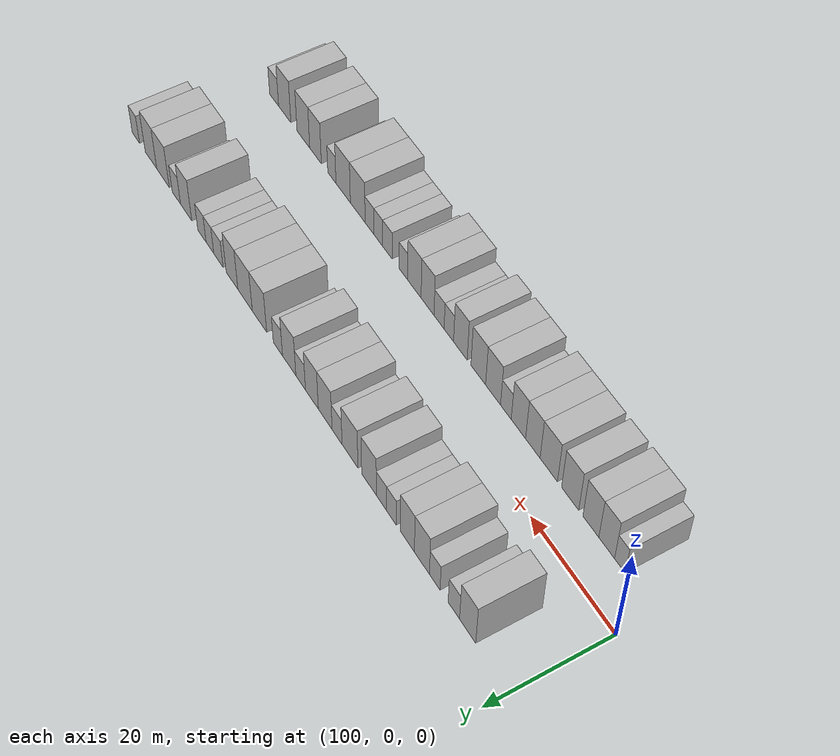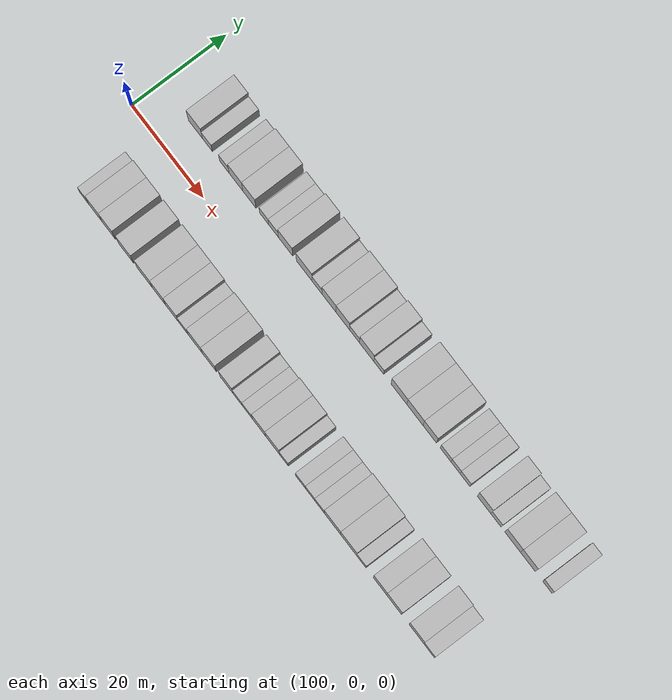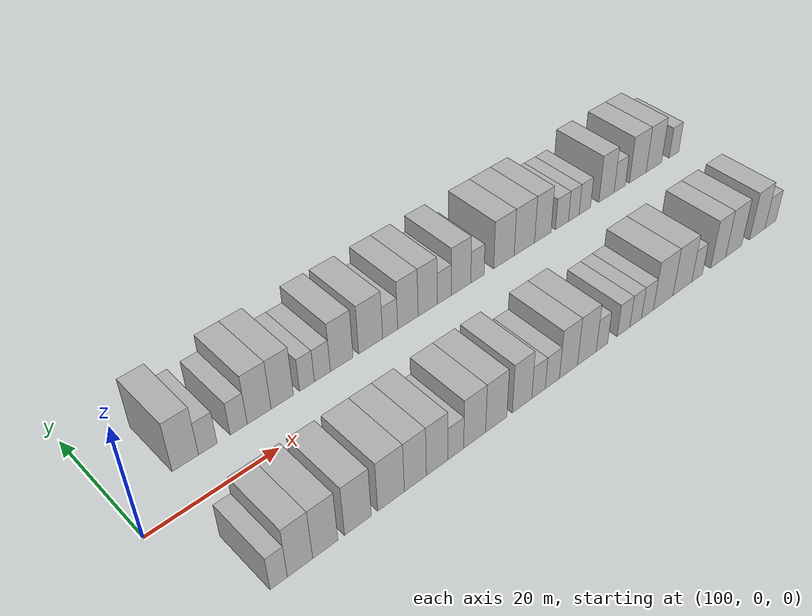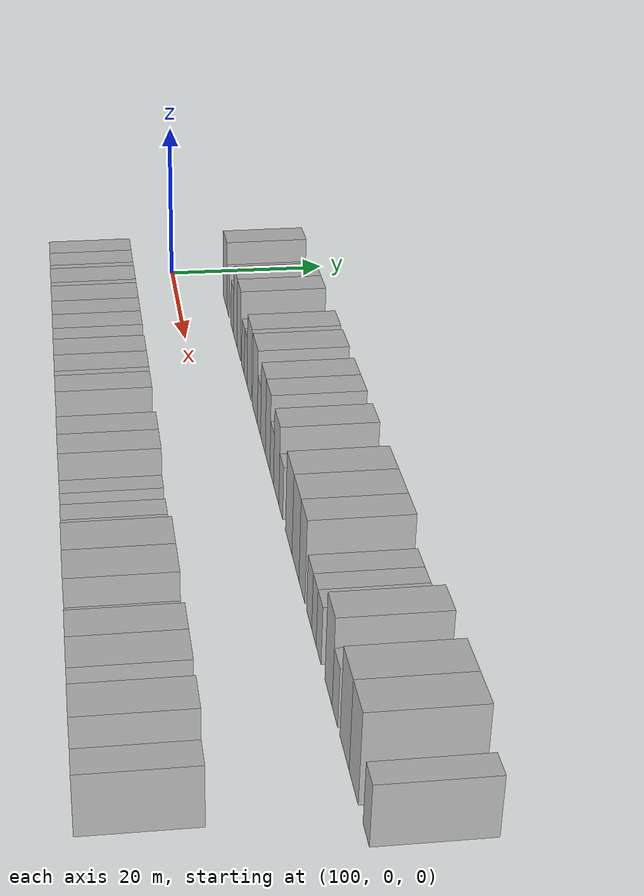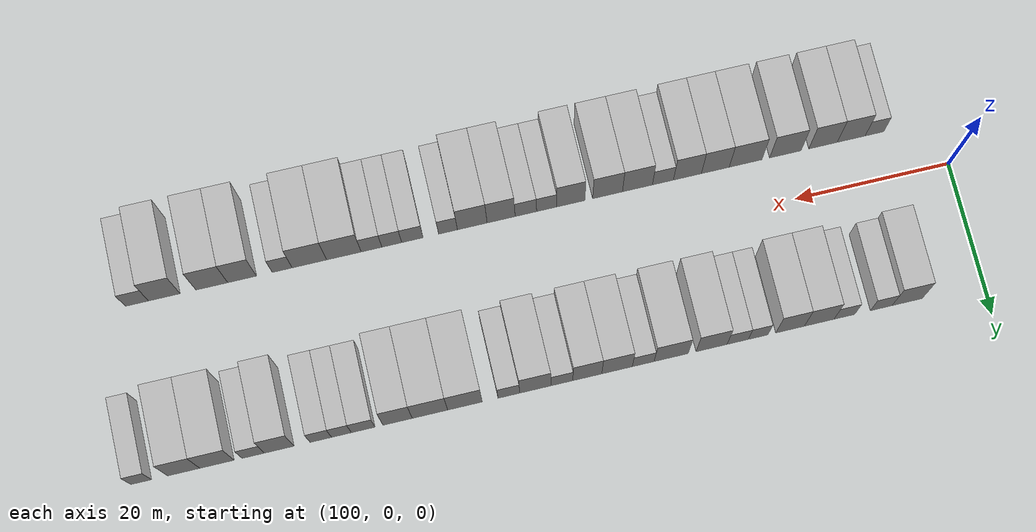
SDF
<sdf version="1.6">
 <world name="default">
  <model name="building_27">
   <static>1</static>
   <pose>109.8516 11.0000 0 0.000000 0.000000 1.570796</pose>
   <link name="link">
    <pose>0 0 4.50 0 0 0</pose>
    <collision name="collision"><geometry><box><size>10.0000 3.9184 9.0000</size></box></geometry></collision>
    <visual name="visual">
     <cast_shadows>0</cast_shadows>
     <geometry><box><size>10.0000 3.9184 9.0000</size></box></geometry>
     <material>
      <script>
       <uri>model://HANNAS_wall/materials/scripts</uri>
       <uri>model://HANNAS_wall/materials/textures</uri>
       <name>vrc/HANNAS_wall</name>
      </script>
     </material>
    </visual>
   </link>
  </model>
  <model name="building_28">
   <static>1</static>
   <pose>113.2139 11.0000 0 0.000000 0.000000 1.570796</pose>
   <link name="link">
    <pose>0 0 3.00 0 0 0</pose>
    <collision name="collision"><geometry><box><size>10.0000 2.8062 6.0000</size></box></geometry></collision>
    <visual name="visual">
     <cast_shadows>0</cast_shadows>
     <geometry><box><size>10.0000 2.8062 6.0000</size></box></geometry>
     <material>
      <script>
       <uri>model://HANNAS_wall/materials/scripts</uri>
       <uri>model://HANNAS_wall/materials/textures</uri>
       <name>vrc/HANNAS_wall</name>
      </script>
     </material>
    </visual>
   </link>
  </model>
  <model name="building_29">
   <static>1</static>
   <pose>117.9558 11.0000 0 0.000000 0.000000 1.570796</pose>
   <link name="link">
    <pose>0 0 3.00 0 0 0</pose>
    <collision name="collision"><geometry><box><size>10.0000 2.6777 6.0000</size></box></geometry></collision>
    <visual name="visual">
     <cast_shadows>0</cast_shadows>
     <geometry><box><size>10.0000 2.6777 6.0000</size></box></geometry>
     <material>
      <script>
       <uri>model://HANNAS_wall/materials/scripts</uri>
       <uri>model://HANNAS_wall/materials/textures</uri>
       <name>vrc/HANNAS_wall</name>
      </script>
     </material>
    </visual>
   </link>
  </model>
  <model name="building_30">
   <static>1</static>
   <pose>121.2060 11.0000 0 0.000000 0.000000 1.570796</pose>
   <link name="link">
    <pose>0 0 4.50 0 0 0</pose>
    <collision name="collision"><geometry><box><size>10.0000 3.8227 9.0000</size></box></geometry></collision>
    <visual name="visual">
     <cast_shadows>0</cast_shadows>
     <geometry><box><size>10.0000 3.8227 9.0000</size></box></geometry>
     <material>
      <script>
       <uri>model://HANNAS_wall/materials/scripts</uri>
       <uri>model://HANNAS_wall/materials/textures</uri>
       <name>vrc/HANNAS_wall</name>
      </script>
     </material>
    </visual>
   </link>
  </model>
  <model name="building_31">
   <static>1</static>
   <pose>124.9539 11.0000 0 0.000000 0.000000 1.570796</pose>
   <link name="link">
    <pose>0 0 4.50 0 0 0</pose>
    <collision name="collision"><geometry><box><size>10.0000 3.6730 9.0000</size></box></geometry></collision>
    <visual name="visual">
     <cast_shadows>0</cast_shadows>
     <geometry><box><size>10.0000 3.6730 9.0000</size></box></geometry>
     <material>
      <script>
       <uri>model://HANNAS_wall/materials/scripts</uri>
       <uri>model://HANNAS_wall/materials/textures</uri>
       <name>vrc/HANNAS_wall</name>
      </script>
     </material>
    </visual>
   </link>
  </model>
  <model name="building_32">
   <static>1</static>
   <pose>129.0474 11.0000 0 0.000000 0.000000 1.570796</pose>
   <link name="link">
    <pose>0 0 3.00 0 0 0</pose>
    <collision name="collision"><geometry><box><size>10.0000 2.5141 6.0000</size></box></geometry></collision>
    <visual name="visual">
     <cast_shadows>0</cast_shadows>
     <geometry><box><size>10.0000 2.5141 6.0000</size></box></geometry>
     <material>
      <script>
       <uri>model://HANNAS_wall/materials/scripts</uri>
       <uri>model://HANNAS_wall/materials/textures</uri>
       <name>vrc/HANNAS_wall</name>
      </script>
     </material>
    </visual>
   </link>
  </model>
  <model name="building_33">
   <static>1</static>
   <pose>131.6731 11.0000 0 0.000000 0.000000 1.570796</pose>
   <link name="link">
    <pose>0 0 3.00 0 0 0</pose>
    <collision name="collision"><geometry><box><size>10.0000 2.7373 6.0000</size></box></geometry></collision>
    <visual name="visual">
     <cast_shadows>0</cast_shadows>
     <geometry><box><size>10.0000 2.7373 6.0000</size></box></geometry>
     <material>
      <script>
       <uri>model://HANNAS_wall/materials/scripts</uri>
       <uri>model://HANNAS_wall/materials/textures</uri>
       <name>vrc/HANNAS_wall</name>
      </script>
     </material>
    </visual>
   </link>
  </model>
  <model name="building_34">
   <static>1</static>
   <pose>135.0254 11.0000 0 0.000000 0.000000 1.570796</pose>
   <link name="link">
    <pose>0 0 4.50 0 0 0</pose>
    <collision name="collision"><geometry><box><size>10.0000 3.9672 9.0000</size></box></geometry></collision>
    <visual name="visual">
     <cast_shadows>0</cast_shadows>
     <geometry><box><size>10.0000 3.9672 9.0000</size></box></geometry>
     <material>
      <script>
       <uri>model://HANNAS_wall/materials/scripts</uri>
       <uri>model://HANNAS_wall/materials/textures</uri>
       <name>vrc/HANNAS_wall</name>
      </script>
     </material>
    </visual>
   </link>
  </model>
  <model name="building_35">
   <static>1</static>
   <pose>140.1852 11.0000 0 0.000000 0.000000 1.570796</pose>
   <link name="link">
    <pose>0 0 4.50 0 0 0</pose>
    <collision name="collision"><geometry><box><size>10.0000 4.3525 9.0000</size></box></geometry></collision>
    <visual name="visual">
     <cast_shadows>0</cast_shadows>
     <geometry><box><size>10.0000 4.3525 9.0000</size></box></geometry>
     <material>
      <script>
       <uri>model://HANNAS_wall/materials/scripts</uri>
       <uri>model://HANNAS_wall/materials/textures</uri>
       <name>vrc/HANNAS_wall</name>
      </script>
     </material>
    </visual>
   </link>
  </model>
  <model name="building_36">
   <static>1</static>
   <pose>143.7481 11.0000 0 0.000000 0.000000 1.570796</pose>
   <link name="link">
    <pose>0 0 3.00 0 0 0</pose>
    <collision name="collision"><geometry><box><size>10.0000 2.7732 6.0000</size></box></geometry></collision>
    <visual name="visual">
     <cast_shadows>0</cast_shadows>
     <geometry><box><size>10.0000 2.7732 6.0000</size></box></geometry>
     <material>
      <script>
       <uri>model://HANNAS_wall/materials/scripts</uri>
       <uri>model://HANNAS_wall/materials/textures</uri>
       <name>vrc/HANNAS_wall</name>
      </script>
     </material>
    </visual>
   </link>
  </model>
  <model name="building_37">
   <static>1</static>
   <pose>147.0758 11.0000 0 0.000000 0.000000 1.570796</pose>
   <link name="link">
    <pose>0 0 4.50 0 0 0</pose>
    <collision name="collision"><geometry><box><size>10.0000 3.8821 9.0000</size></box></geometry></collision>
    <visual name="visual">
     <cast_shadows>0</cast_shadows>
     <geometry><box><size>10.0000 3.8821 9.0000</size></box></geometry>
     <material>
      <script>
       <uri>model://HANNAS_wall/materials/scripts</uri>
       <uri>model://HANNAS_wall/materials/textures</uri>
       <name>vrc/HANNAS_wall</name>
      </script>
     </material>
    </visual>
   </link>
  </model>
  <model name="building_38">
   <static>1</static>
   <pose>150.8622 11.0000 0 0.000000 0.000000 1.570796</pose>
   <link name="link">
    <pose>0 0 4.50 0 0 0</pose>
    <collision name="collision"><geometry><box><size>10.0000 3.6908 9.0000</size></box></geometry></collision>
    <visual name="visual">
     <cast_shadows>0</cast_shadows>
     <geometry><box><size>10.0000 3.6908 9.0000</size></box></geometry>
     <material>
      <script>
       <uri>model://HANNAS_wall/materials/scripts</uri>
       <uri>model://HANNAS_wall/materials/textures</uri>
       <name>vrc/HANNAS_wall</name>
      </script>
     </material>
    </visual>
   </link>
  </model>
  <model name="building_39">
   <static>1</static>
   <pose>154.0975 11.0000 0 0.000000 0.000000 1.570796</pose>
   <link name="link">
    <pose>0 0 3.00 0 0 0</pose>
    <collision name="collision"><geometry><box><size>10.0000 2.7798 6.0000</size></box></geometry></collision>
    <visual name="visual">
     <cast_shadows>0</cast_shadows>
     <geometry><box><size>10.0000 2.7798 6.0000</size></box></geometry>
     <material>
      <script>
       <uri>model://HANNAS_wall/materials/scripts</uri>
       <uri>model://HANNAS_wall/materials/textures</uri>
       <name>vrc/HANNAS_wall</name>
      </script>
     </material>
    </visual>
   </link>
  </model>
  <model name="building_40">
   <static>1</static>
   <pose>157.4542 11.0000 0 0.000000 0.000000 1.570796</pose>
   <link name="link">
    <pose>0 0 4.50 0 0 0</pose>
    <collision name="collision"><geometry><box><size>10.0000 3.9337 9.0000</size></box></geometry></collision>
    <visual name="visual">
     <cast_shadows>0</cast_shadows>
     <geometry><box><size>10.0000 3.9337 9.0000</size></box></geometry>
     <material>
      <script>
       <uri>model://HANNAS_wall/materials/scripts</uri>
       <uri>model://HANNAS_wall/materials/textures</uri>
       <name>vrc/HANNAS_wall</name>
      </script>
     </material>
    </visual>
   </link>
  </model>
  <model name="building_41">
   <static>1</static>
   <pose>160.7927 11.0000 0 0.000000 0.000000 1.570796</pose>
   <link name="link">
    <pose>0 0 3.00 0 0 0</pose>
    <collision name="collision"><geometry><box><size>10.0000 2.7434 6.0000</size></box></geometry></collision>
    <visual name="visual">
     <cast_shadows>0</cast_shadows>
     <geometry><box><size>10.0000 2.7434 6.0000</size></box></geometry>
     <material>
      <script>
       <uri>model://HANNAS_wall/materials/scripts</uri>
       <uri>model://HANNAS_wall/materials/textures</uri>
       <name>vrc/HANNAS_wall</name>
      </script>
     </material>
    </visual>
   </link>
  </model>
  <model name="building_42">
   <static>1</static>
   <pose>166.3499 11.0000 0 0.000000 0.000000 1.570796</pose>
   <link name="link">
    <pose>0 0 4.50 0 0 0</pose>
    <collision name="collision"><geometry><box><size>10.0000 4.3709 9.0000</size></box></geometry></collision>
    <visual name="visual">
     <cast_shadows>0</cast_shadows>
     <geometry><box><size>10.0000 4.3709 9.0000</size></box></geometry>
     <material>
      <script>
       <uri>model://HANNAS_wall/materials/scripts</uri>
       <uri>model://HANNAS_wall/materials/textures</uri>
       <name>vrc/HANNAS_wall</name>
      </script>
     </material>
    </visual>
   </link>
  </model>
  <model name="building_43">
   <static>1</static>
   <pose>170.7616 11.0000 0 0.000000 0.000000 1.570796</pose>
   <link name="link">
    <pose>0 0 4.50 0 0 0</pose>
    <collision name="collision"><geometry><box><size>10.0000 4.4524 9.0000</size></box></geometry></collision>
    <visual name="visual">
     <cast_shadows>0</cast_shadows>
     <geometry><box><size>10.0000 4.4524 9.0000</size></box></geometry>
     <material>
      <script>
       <uri>model://HANNAS_wall/materials/scripts</uri>
       <uri>model://HANNAS_wall/materials/textures</uri>
       <name>vrc/HANNAS_wall</name>
      </script>
     </material>
    </visual>
   </link>
  </model>
  <model name="building_44">
   <static>1</static>
   <pose>174.8276 11.0000 0 0.000000 0.000000 1.570796</pose>
   <link name="link">
    <pose>0 0 4.50 0 0 0</pose>
    <collision name="collision"><geometry><box><size>10.0000 3.6796 9.0000</size></box></geometry></collision>
    <visual name="visual">
     <cast_shadows>0</cast_shadows>
     <geometry><box><size>10.0000 3.6796 9.0000</size></box></geometry>
     <material>
      <script>
       <uri>model://HANNAS_wall/materials/scripts</uri>
       <uri>model://HANNAS_wall/materials/textures</uri>
       <name>vrc/HANNAS_wall</name>
      </script>
     </material>
    </visual>
   </link>
  </model>
  <model name="building_45">
   <static>1</static>
   <pose>179.1522 11.0000 0 0.000000 0.000000 1.570796</pose>
   <link name="link">
    <pose>0 0 3.00 0 0 0</pose>
    <collision name="collision"><geometry><box><size>10.0000 2.9696 6.0000</size></box></geometry></collision>
    <visual name="visual">
     <cast_shadows>0</cast_shadows>
     <geometry><box><size>10.0000 2.9696 6.0000</size></box></geometry>
     <material>
      <script>
       <uri>model://HANNAS_wall/materials/scripts</uri>
       <uri>model://HANNAS_wall/materials/textures</uri>
       <name>vrc/HANNAS_wall</name>
      </script>
     </material>
    </visual>
   </link>
  </model>
  <model name="building_46">
   <static>1</static>
   <pose>181.8782 11.0000 0 0.000000 0.000000 1.570796</pose>
   <link name="link">
    <pose>0 0 3.00 0 0 0</pose>
    <collision name="collision"><geometry><box><size>10.0000 2.4825 6.0000</size></box></geometry></collision>
    <visual name="visual">
     <cast_shadows>0</cast_shadows>
     <geometry><box><size>10.0000 2.4825 6.0000</size></box></geometry>
     <material>
      <script>
       <uri>model://HANNAS_wall/materials/scripts</uri>
       <uri>model://HANNAS_wall/materials/textures</uri>
       <name>vrc/HANNAS_wall</name>
      </script>
     </material>
    </visual>
   </link>
  </model>
  <model name="building_47">
   <static>1</static>
   <pose>184.4671 11.0000 0 0.000000 0.000000 1.570796</pose>
   <link name="link">
    <pose>0 0 3.00 0 0 0</pose>
    <collision name="collision"><geometry><box><size>10.0000 2.6953 6.0000</size></box></geometry></collision>
    <visual name="visual">
     <cast_shadows>0</cast_shadows>
     <geometry><box><size>10.0000 2.6953 6.0000</size></box></geometry>
     <material>
      <script>
       <uri>model://HANNAS_wall/materials/scripts</uri>
       <uri>model://HANNAS_wall/materials/textures</uri>
       <name>vrc/HANNAS_wall</name>
      </script>
     </material>
    </visual>
   </link>
  </model>
  <model name="building_48">
   <static>1</static>
   <pose>189.6644 11.0000 0 0.000000 0.000000 1.570796</pose>
   <link name="link">
    <pose>0 0 4.50 0 0 0</pose>
    <collision name="collision"><geometry><box><size>10.0000 3.6995 9.0000</size></box></geometry></collision>
    <visual name="visual">
     <cast_shadows>0</cast_shadows>
     <geometry><box><size>10.0000 3.6995 9.0000</size></box></geometry>
     <material>
      <script>
       <uri>model://HANNAS_wall/materials/scripts</uri>
       <uri>model://HANNAS_wall/materials/textures</uri>
       <name>vrc/HANNAS_wall</name>
      </script>
     </material>
    </visual>
   </link>
  </model>
  <model name="building_49">
   <static>1</static>
   <pose>192.9085 11.0000 0 0.000000 0.000000 1.570796</pose>
   <link name="link">
    <pose>0 0 3.00 0 0 0</pose>
    <collision name="collision"><geometry><box><size>10.0000 2.7885 6.0000</size></box></geometry></collision>
    <visual name="visual">
     <cast_shadows>0</cast_shadows>
     <geometry><box><size>10.0000 2.7885 6.0000</size></box></geometry>
     <material>
      <script>
       <uri>model://HANNAS_wall/materials/scripts</uri>
       <uri>model://HANNAS_wall/materials/textures</uri>
       <name>vrc/HANNAS_wall</name>
      </script>
     </material>
    </visual>
   </link>
  </model>
  <model name="building_50">
   <static>1</static>
   <pose>197.4392 11.0000 0 0.000000 0.000000 1.570796</pose>
   <link name="link">
    <pose>0 0 4.50 0 0 0</pose>
    <collision name="collision"><geometry><box><size>10.0000 4.2730 9.0000</size></box></geometry></collision>
    <visual name="visual">
     <cast_shadows>0</cast_shadows>
     <geometry><box><size>10.0000 4.2730 9.0000</size></box></geometry>
     <material>
      <script>
       <uri>model://HANNAS_wall/materials/scripts</uri>
       <uri>model://HANNAS_wall/materials/textures</uri>
       <name>vrc/HANNAS_wall</name>
      </script>
     </material>
    </visual>
   </link>
  </model>
  <model name="building_51">
   <static>1</static>
   <pose>201.5754 11.0000 0 0.000000 0.000000 1.570796</pose>
   <link name="link">
    <pose>0 0 4.50 0 0 0</pose>
    <collision name="collision"><geometry><box><size>10.0000 3.9994 9.0000</size></box></geometry></collision>
    <visual name="visual">
     <cast_shadows>0</cast_shadows>
     <geometry><box><size>10.0000 3.9994 9.0000</size></box></geometry>
     <material>
      <script>
       <uri>model://HANNAS_wall/materials/scripts</uri>
       <uri>model://HANNAS_wall/materials/textures</uri>
       <name>vrc/HANNAS_wall</name>
      </script>
     </material>
    </visual>
   </link>
  </model>
  <model name="building_52">
   <static>1</static>
   <pose>206.8593 11.0000 0 0.000000 0.000000 1.570796</pose>
   <link name="link">
    <pose>0 0 3.00 0 0 0</pose>
    <collision name="collision"><geometry><box><size>10.0000 2.5684 6.0000</size></box></geometry></collision>
    <visual name="visual">
     <cast_shadows>0</cast_shadows>
     <geometry><box><size>10.0000 2.5684 6.0000</size></box></geometry>
     <material>
      <script>
       <uri>model://HANNAS_wall/materials/scripts</uri>
       <uri>model://HANNAS_wall/materials/textures</uri>
       <name>vrc/HANNAS_wall</name>
      </script>
     </material>
    </visual>
   </link>
  </model>
  <model name="building_78">
   <static>1</static>
   <pose>107.9987 -11.0000 0 0.000000 0.000000 1.570796</pose>
   <link name="link">
    <pose>0 0 3.00 0 0 0</pose>
    <collision name="collision"><geometry><box><size>10.0000 2.4564 6.0000</size></box></geometry></collision>
    <visual name="visual">
     <cast_shadows>0</cast_shadows>
     <geometry><box><size>10.0000 2.4564 6.0000</size></box></geometry>
     <material>
      <script>
       <uri>model://HANNAS_wall/materials/scripts</uri>
       <uri>model://HANNAS_wall/materials/textures</uri>
       <name>vrc/HANNAS_wall</name>
      </script>
     </material>
    </visual>
   </link>
  </model>
  <model name="building_79">
   <static>1</static>
   <pose>111.0566 -11.0000 0 0.000000 0.000000 1.570796</pose>
   <link name="link">
    <pose>0 0 4.50 0 0 0</pose>
    <collision name="collision"><geometry><box><size>10.0000 3.6594 9.0000</size></box></geometry></collision>
    <visual name="visual">
     <cast_shadows>0</cast_shadows>
     <geometry><box><size>10.0000 3.6594 9.0000</size></box></geometry>
     <material>
      <script>
       <uri>model://HANNAS_wall/materials/scripts</uri>
       <uri>model://HANNAS_wall/materials/textures</uri>
       <name>vrc/HANNAS_wall</name>
      </script>
     </material>
    </visual>
   </link>
  </model>
  <model name="building_80">
   <static>1</static>
   <pose>114.7641 -11.0000 0 0.000000 0.000000 1.570796</pose>
   <link name="link">
    <pose>0 0 4.50 0 0 0</pose>
    <collision name="collision"><geometry><box><size>10.0000 3.7557 9.0000</size></box></geometry></collision>
    <visual name="visual">
     <cast_shadows>0</cast_shadows>
     <geometry><box><size>10.0000 3.7557 9.0000</size></box></geometry>
     <material>
      <script>
       <uri>model://HANNAS_wall/materials/scripts</uri>
       <uri>model://HANNAS_wall/materials/textures</uri>
       <name>vrc/HANNAS_wall</name>
      </script>
     </material>
    </visual>
   </link>
  </model>
  <model name="building_81">
   <static>1</static>
   <pose>119.7117 -11.0000 0 0.000000 0.000000 1.570796</pose>
   <link name="link">
    <pose>0 0 4.50 0 0 0</pose>
    <collision name="collision"><geometry><box><size>10.0000 4.1393 9.0000</size></box></geometry></collision>
    <visual name="visual">
     <cast_shadows>0</cast_shadows>
     <geometry><box><size>10.0000 4.1393 9.0000</size></box></geometry>
     <material>
      <script>
       <uri>model://HANNAS_wall/materials/scripts</uri>
       <uri>model://HANNAS_wall/materials/textures</uri>
       <name>vrc/HANNAS_wall</name>
      </script>
     </material>
    </visual>
   </link>
  </model>
  <model name="building_82">
   <static>1</static>
   <pose>124.9192 -11.0000 0 0.000000 0.000000 1.570796</pose>
   <link name="link">
    <pose>0 0 4.50 0 0 0</pose>
    <collision name="collision"><geometry><box><size>10.0000 4.2758 9.0000</size></box></geometry></collision>
    <visual name="visual">
     <cast_shadows>0</cast_shadows>
     <geometry><box><size>10.0000 4.2758 9.0000</size></box></geometry>
     <material>
      <script>
       <uri>model://HANNAS_wall/materials/scripts</uri>
       <uri>model://HANNAS_wall/materials/textures</uri>
       <name>vrc/HANNAS_wall</name>
      </script>
     </material>
    </visual>
   </link>
  </model>
  <model name="building_83">
   <static>1</static>
   <pose>128.8780 -11.0000 0 0.000000 0.000000 1.570796</pose>
   <link name="link">
    <pose>0 0 4.50 0 0 0</pose>
    <collision name="collision"><geometry><box><size>10.0000 3.6418 9.0000</size></box></geometry></collision>
    <visual name="visual">
     <cast_shadows>0</cast_shadows>
     <geometry><box><size>10.0000 3.6418 9.0000</size></box></geometry>
     <material>
      <script>
       <uri>model://HANNAS_wall/materials/scripts</uri>
       <uri>model://HANNAS_wall/materials/textures</uri>
       <name>vrc/HANNAS_wall</name>
      </script>
     </material>
    </visual>
   </link>
  </model>
  <model name="building_84">
   <static>1</static>
   <pose>132.5225 -11.0000 0 0.000000 0.000000 1.570796</pose>
   <link name="link">
    <pose>0 0 4.50 0 0 0</pose>
    <collision name="collision"><geometry><box><size>10.0000 3.6471 9.0000</size></box></geometry></collision>
    <visual name="visual">
     <cast_shadows>0</cast_shadows>
     <geometry><box><size>10.0000 3.6471 9.0000</size></box></geometry>
     <material>
      <script>
       <uri>model://HANNAS_wall/materials/scripts</uri>
       <uri>model://HANNAS_wall/materials/textures</uri>
       <name>vrc/HANNAS_wall</name>
      </script>
     </material>
    </visual>
   </link>
  </model>
  <model name="building_85">
   <static>1</static>
   <pose>135.7167 -11.0000 0 0.000000 0.000000 1.570796</pose>
   <link name="link">
    <pose>0 0 3.00 0 0 0</pose>
    <collision name="collision"><geometry><box><size>10.0000 2.7413 6.0000</size></box></geometry></collision>
    <visual name="visual">
     <cast_shadows>0</cast_shadows>
     <geometry><box><size>10.0000 2.7413 6.0000</size></box></geometry>
     <material>
      <script>
       <uri>model://HANNAS_wall/materials/scripts</uri>
       <uri>model://HANNAS_wall/materials/textures</uri>
       <name>vrc/HANNAS_wall</name>
      </script>
     </material>
    </visual>
   </link>
  </model>
  <model name="building_86">
   <static>1</static>
   <pose>139.0335 -11.0000 0 0.000000 0.000000 1.570796</pose>
   <link name="link">
    <pose>0 0 4.50 0 0 0</pose>
    <collision name="collision"><geometry><box><size>10.0000 3.8922 9.0000</size></box></geometry></collision>
    <visual name="visual">
     <cast_shadows>0</cast_shadows>
     <geometry><box><size>10.0000 3.8922 9.0000</size></box></geometry>
     <material>
      <script>
       <uri>model://HANNAS_wall/materials/scripts</uri>
       <uri>model://HANNAS_wall/materials/textures</uri>
       <name>vrc/HANNAS_wall</name>
      </script>
     </material>
    </visual>
   </link>
  </model>
  <model name="building_87">
   <static>1</static>
   <pose>142.9165 -11.0000 0 0.000000 0.000000 1.570796</pose>
   <link name="link">
    <pose>0 0 4.50 0 0 0</pose>
    <collision name="collision"><geometry><box><size>10.0000 3.8740 9.0000</size></box></geometry></collision>
    <visual name="visual">
     <cast_shadows>0</cast_shadows>
     <geometry><box><size>10.0000 3.8740 9.0000</size></box></geometry>
     <material>
      <script>
       <uri>model://HANNAS_wall/materials/scripts</uri>
       <uri>model://HANNAS_wall/materials/textures</uri>
       <name>vrc/HANNAS_wall</name>
      </script>
     </material>
    </visual>
   </link>
  </model>
  <model name="building_88">
   <static>1</static>
   <pose>147.6881 -11.0000 0 0.000000 0.000000 1.570796</pose>
   <link name="link">
    <pose>0 0 4.50 0 0 0</pose>
    <collision name="collision"><geometry><box><size>10.0000 3.6691 9.0000</size></box></geometry></collision>
    <visual name="visual">
     <cast_shadows>0</cast_shadows>
     <geometry><box><size>10.0000 3.6691 9.0000</size></box></geometry>
     <material>
      <script>
       <uri>model://HANNAS_wall/materials/scripts</uri>
       <uri>model://HANNAS_wall/materials/textures</uri>
       <name>vrc/HANNAS_wall</name>
      </script>
     </material>
    </visual>
   </link>
  </model>
  <model name="building_89">
   <static>1</static>
   <pose>150.8144 -11.0000 0 0.000000 0.000000 1.570796</pose>
   <link name="link">
    <pose>0 0 3.00 0 0 0</pose>
    <collision name="collision"><geometry><box><size>10.0000 2.5835 6.0000</size></box></geometry></collision>
    <visual name="visual">
     <cast_shadows>0</cast_shadows>
     <geometry><box><size>10.0000 2.5835 6.0000</size></box></geometry>
     <material>
      <script>
       <uri>model://HANNAS_wall/materials/scripts</uri>
       <uri>model://HANNAS_wall/materials/textures</uri>
       <name>vrc/HANNAS_wall</name>
      </script>
     </material>
    </visual>
   </link>
  </model>
  <model name="building_90">
   <static>1</static>
   <pose>153.4941 -11.0000 0 0.000000 0.000000 1.570796</pose>
   <link name="link">
    <pose>0 0 3.00 0 0 0</pose>
    <collision name="collision"><geometry><box><size>10.0000 2.7759 6.0000</size></box></geometry></collision>
    <visual name="visual">
     <cast_shadows>0</cast_shadows>
     <geometry><box><size>10.0000 2.7759 6.0000</size></box></geometry>
     <material>
      <script>
       <uri>model://HANNAS_wall/materials/scripts</uri>
       <uri>model://HANNAS_wall/materials/textures</uri>
       <name>vrc/HANNAS_wall</name>
      </script>
     </material>
    </visual>
   </link>
  </model>
  <model name="building_91">
   <static>1</static>
   <pose>156.6890 -11.0000 0 0.000000 0.000000 1.570796</pose>
   <link name="link">
    <pose>0 0 4.50 0 0 0</pose>
    <collision name="collision"><geometry><box><size>10.0000 3.6140 9.0000</size></box></geometry></collision>
    <visual name="visual">
     <cast_shadows>0</cast_shadows>
     <geometry><box><size>10.0000 3.6140 9.0000</size></box></geometry>
     <material>
      <script>
       <uri>model://HANNAS_wall/materials/scripts</uri>
       <uri>model://HANNAS_wall/materials/textures</uri>
       <name>vrc/HANNAS_wall</name>
      </script>
     </material>
    </visual>
   </link>
  </model>
  <model name="building_92">
   <static>1</static>
   <pose>160.4086 -11.0000 0 0.000000 0.000000 1.570796</pose>
   <link name="link">
    <pose>0 0 4.50 0 0 0</pose>
    <collision name="collision"><geometry><box><size>10.0000 3.8252 9.0000</size></box></geometry></collision>
    <visual name="visual">
     <cast_shadows>0</cast_shadows>
     <geometry><box><size>10.0000 3.8252 9.0000</size></box></geometry>
     <material>
      <script>
       <uri>model://HANNAS_wall/materials/scripts</uri>
       <uri>model://HANNAS_wall/materials/textures</uri>
       <name>vrc/HANNAS_wall</name>
      </script>
     </material>
    </visual>
   </link>
  </model>
  <model name="building_93">
   <static>1</static>
   <pose>163.5311 -11.0000 0 0.000000 0.000000 1.570796</pose>
   <link name="link">
    <pose>0 0 3.00 0 0 0</pose>
    <collision name="collision"><geometry><box><size>10.0000 2.4197 6.0000</size></box></geometry></collision>
    <visual name="visual">
     <cast_shadows>0</cast_shadows>
     <geometry><box><size>10.0000 2.4197 6.0000</size></box></geometry>
     <material>
      <script>
       <uri>model://HANNAS_wall/materials/scripts</uri>
       <uri>model://HANNAS_wall/materials/textures</uri>
       <name>vrc/HANNAS_wall</name>
      </script>
     </material>
    </visual>
   </link>
  </model>
  <model name="building_94">
   <static>1</static>
   <pose>168.1106 -11.0000 0 0.000000 0.000000 1.570796</pose>
   <link name="link">
    <pose>0 0 3.00 0 0 0</pose>
    <collision name="collision"><geometry><box><size>10.0000 2.7392 6.0000</size></box></geometry></collision>
    <visual name="visual">
     <cast_shadows>0</cast_shadows>
     <geometry><box><size>10.0000 2.7392 6.0000</size></box></geometry>
     <material>
      <script>
       <uri>model://HANNAS_wall/materials/scripts</uri>
       <uri>model://HANNAS_wall/materials/textures</uri>
       <name>vrc/HANNAS_wall</name>
      </script>
     </material>
    </visual>
   </link>
  </model>
  <model name="building_95">
   <static>1</static>
   <pose>170.7535 -11.0000 0 0.000000 0.000000 1.570796</pose>
   <link name="link">
    <pose>0 0 3.00 0 0 0</pose>
    <collision name="collision"><geometry><box><size>10.0000 2.5464 6.0000</size></box></geometry></collision>
    <visual name="visual">
     <cast_shadows>0</cast_shadows>
     <geometry><box><size>10.0000 2.5464 6.0000</size></box></geometry>
     <material>
      <script>
       <uri>model://HANNAS_wall/materials/scripts</uri>
       <uri>model://HANNAS_wall/materials/textures</uri>
       <name>vrc/HANNAS_wall</name>
      </script>
     </material>
    </visual>
   </link>
  </model>
  <model name="building_96">
   <static>1</static>
   <pose>173.3532 -11.0000 0 0.000000 0.000000 1.570796</pose>
   <link name="link">
    <pose>0 0 3.00 0 0 0</pose>
    <collision name="collision"><geometry><box><size>10.0000 2.6531 6.0000</size></box></geometry></collision>
    <visual name="visual">
     <cast_shadows>0</cast_shadows>
     <geometry><box><size>10.0000 2.6531 6.0000</size></box></geometry>
     <material>
      <script>
       <uri>model://HANNAS_wall/materials/scripts</uri>
       <uri>model://HANNAS_wall/materials/textures</uri>
       <name>vrc/HANNAS_wall</name>
      </script>
     </material>
    </visual>
   </link>
  </model>
  <model name="building_97">
   <static>1</static>
   <pose>176.8973 -11.0000 0 0.000000 0.000000 1.570796</pose>
   <link name="link">
    <pose>0 0 4.50 0 0 0</pose>
    <collision name="collision"><geometry><box><size>10.0000 4.4350 9.0000</size></box></geometry></collision>
    <visual name="visual">
     <cast_shadows>0</cast_shadows>
     <geometry><box><size>10.0000 4.4350 9.0000</size></box></geometry>
     <material>
      <script>
       <uri>model://HANNAS_wall/materials/scripts</uri>
       <uri>model://HANNAS_wall/materials/textures</uri>
       <name>vrc/HANNAS_wall</name>
      </script>
     </material>
    </visual>
   </link>
  </model>
  <model name="building_98">
   <static>1</static>
   <pose>181.3147 -11.0000 0 0.000000 0.000000 1.570796</pose>
   <link name="link">
    <pose>0 0 4.50 0 0 0</pose>
    <collision name="collision"><geometry><box><size>10.0000 4.3998 9.0000</size></box></geometry></collision>
    <visual name="visual">
     <cast_shadows>0</cast_shadows>
     <geometry><box><size>10.0000 4.3998 9.0000</size></box></geometry>
     <material>
      <script>
       <uri>model://HANNAS_wall/materials/scripts</uri>
       <uri>model://HANNAS_wall/materials/textures</uri>
       <name>vrc/HANNAS_wall</name>
      </script>
     </material>
    </visual>
   </link>
  </model>
  <model name="building_99">
   <static>1</static>
   <pose>184.7837 -11.0000 0 0.000000 0.000000 1.570796</pose>
   <link name="link">
    <pose>0 0 3.00 0 0 0</pose>
    <collision name="collision"><geometry><box><size>10.0000 2.5382 6.0000</size></box></geometry></collision>
    <visual name="visual">
     <cast_shadows>0</cast_shadows>
     <geometry><box><size>10.0000 2.5382 6.0000</size></box></geometry>
     <material>
      <script>
       <uri>model://HANNAS_wall/materials/scripts</uri>
       <uri>model://HANNAS_wall/materials/textures</uri>
       <name>vrc/HANNAS_wall</name>
      </script>
     </material>
    </visual>
   </link>
  </model>
  <model name="building_100">
   <static>1</static>
   <pose>189.8859 -11.0000 0 0.000000 0.000000 1.570796</pose>
   <link name="link">
    <pose>0 0 4.50 0 0 0</pose>
    <collision name="collision"><geometry><box><size>10.0000 3.6662 9.0000</size></box></geometry></collision>
    <visual name="visual">
     <cast_shadows>0</cast_shadows>
     <geometry><box><size>10.0000 3.6662 9.0000</size></box></geometry>
     <material>
      <script>
       <uri>model://HANNAS_wall/materials/scripts</uri>
       <uri>model://HANNAS_wall/materials/textures</uri>
       <name>vrc/HANNAS_wall</name>
      </script>
     </material>
    </visual>
   </link>
  </model>
  <model name="building_101">
   <static>1</static>
   <pose>193.7436 -11.0000 0 0.000000 0.000000 1.570796</pose>
   <link name="link">
    <pose>0 0 4.50 0 0 0</pose>
    <collision name="collision"><geometry><box><size>10.0000 4.0493 9.0000</size></box></geometry></collision>
    <visual name="visual">
     <cast_shadows>0</cast_shadows>
     <geometry><box><size>10.0000 4.0493 9.0000</size></box></geometry>
     <material>
      <script>
       <uri>model://HANNAS_wall/materials/scripts</uri>
       <uri>model://HANNAS_wall/materials/textures</uri>
       <name>vrc/HANNAS_wall</name>
      </script>
     </material>
    </visual>
   </link>
  </model>
  <model name="building_102">
   <static>1</static>
   <pose>199.7665 -11.0000 0 0.000000 0.000000 1.570796</pose>
   <link name="link">
    <pose>0 0 4.50 0 0 0</pose>
    <collision name="collision"><geometry><box><size>10.0000 3.9965 9.0000</size></box></geometry></collision>
    <visual name="visual">
     <cast_shadows>0</cast_shadows>
     <geometry><box><size>10.0000 3.9965 9.0000</size></box></geometry>
     <material>
      <script>
       <uri>model://HANNAS_wall/materials/scripts</uri>
       <uri>model://HANNAS_wall/materials/textures</uri>
       <name>vrc/HANNAS_wall</name>
      </script>
     </material>
    </visual>
   </link>
  </model>
  <model name="building_103">
   <static>1</static>
   <pose>203.2389 -11.0000 0 0.000000 0.000000 1.570796</pose>
   <link name="link">
    <pose>0 0 3.00 0 0 0</pose>
    <collision name="collision"><geometry><box><size>10.0000 2.9482 6.0000</size></box></geometry></collision>
    <visual name="visual">
     <cast_shadows>0</cast_shadows>
     <geometry><box><size>10.0000 2.9482 6.0000</size></box></geometry>
     <material>
      <script>
       <uri>model://HANNAS_wall/materials/scripts</uri>
       <uri>model://HANNAS_wall/materials/textures</uri>
       <name>vrc/HANNAS_wall</name>
      </script>
     </material>
    </visual>
   </link>
  </model>
 </world>
</sdf>
